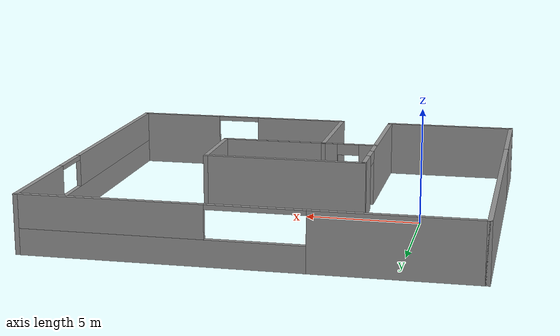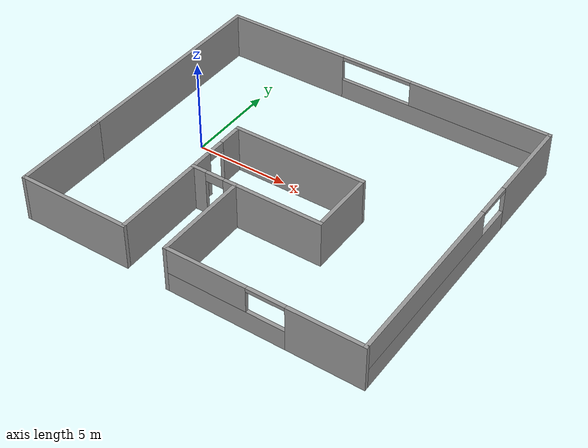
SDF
<sdf version='1.3'>
  <model name='walls'>
      <link name='Wall_0'>
        <collision name='Wall_0_Collision'>
          <geometry>
            <box>
              <size>11.999300 0.200000 2.500000</size>
            </box>
          </geometry>
          <pose>0.000000 0.000000 1.250000 0.000000 0.000000 0.000000</pose>
          <surface>
            <bounce/>
            <friction>
              <ode/>
            </friction>
            <contact>
              <ode/>
            </contact>
          </surface>
        </collision>
        <visual name='Wall_0_Visual'>
          <pose>0.000000 0.000000 1.250000 0.000000 0.000000 0.000000</pose>
          <geometry>
            <box>
              <size>11.999300 0.200000 2.500000</size>
            </box>
          </geometry>
          <material>
            <script>
              <uri>file://media/materials/scripts/gazebo.material</uri>
              <name>Gazebo/Grey</name>
            </script>
          </material>
        </visual>
        <velocity_decay>
          <linear>0.000000</linear>
          <angular>0.000000</angular>
        </velocity_decay>
        <pose>-3.370000 1.799650 0.000000 0.000000 0.000000 1.570800</pose>
        <self_collide>0</self_collide>
        <kinematic>0</kinematic>
        <gravity>1</gravity>
      </link>
      <link name='Wall_1'>
        <pose>5.880010 7.699300 0.000000 0.000000 0.000000 0.000000</pose>
        <visual name='Wall_1_Visual_0'>
          <pose>-5.882070 0.000000 1.250000 0.000000 0.000000 0.000000</pose>
          <geometry>
            <box>
              <size>6.935860 0.200000 2.500000</size>
            </box>
          </geometry>
          <material>
            <script>
              <uri>file://media/materials/scripts/gazebo.material</uri>
              <name>Gazebo/Grey</name>
            </script>
          </material>
        </visual>
        <collision name='Wall_1_Collision_0'>
          <geometry>
            <box>
              <size>6.935860 0.200000 2.500000</size>
            </box>
          </geometry>
          <pose>-5.882070 0.000000 1.250000 0.000000 0.000000 0.000000</pose>
          <surface>
            <bounce/>
            <friction>
              <ode/>
            </friction>
            <contact>
              <ode/>
            </contact>
          </surface>
        </collision>
        <visual name='Wall_1_Visual_1'>
          <pose>3.467930 0.000000 0.550000 0.000000 0.000000 0.000000</pose>
          <geometry>
            <box>
              <size>11.764100 0.200000 1.100000</size>
            </box>
          </geometry>
          <material>
            <script>
              <uri>file://media/materials/scripts/gazebo.material</uri>
              <name>Gazebo/Grey</name>
            </script>
          </material>
        </visual>
        <collision name='Wall_1_Collision_1'>
          <geometry>
            <box>
              <size>11.764100 0.200000 1.100000</size>
            </box>
          </geometry>
          <pose>3.467930 0.000000 0.550000 0.000000 0.000000 0.000000</pose>
          <surface>
            <bounce/>
            <friction>
              <ode/>
            </friction>
            <contact>
              <ode/>
            </contact>
          </surface>
        </collision>
        <visual name='Wall_1_Visual_2'>
          <pose>5.467930 0.000000 1.800000 0.000000 0.000000 0.000000</pose>
          <geometry>
            <box>
              <size>7.764140 0.200000 1.400000</size>
            </box>
          </geometry>
          <material>
            <script>
              <uri>file://media/materials/scripts/gazebo.material</uri>
              <name>Gazebo/Grey</name>
            </script>
          </material>
        </visual>
        <collision name='Wall_1_Collision_2'>
          <geometry>
            <box>
              <size>7.764140 0.200000 1.400000</size>
            </box>
          </geometry>
          <pose>5.467930 0.000000 1.800000 0.000000 0.000000 0.000000</pose>
          <surface>
            <bounce/>
            <friction>
              <ode/>
            </friction>
            <contact>
              <ode/>
            </contact>
          </surface>
        </collision>
        <visual name='Wall_1_Visual_3'>
          <pose>-0.414141 0.000000 2.400000 0.000000 0.000000 0.000000</pose>
          <geometry>
            <box>
              <size>4.000000 0.200000 0.200000</size>
            </box>
          </geometry>
          <material>
            <script>
              <uri>file://media/materials/scripts/gazebo.material</uri>
              <name>Gazebo/Grey</name>
            </script>
          </material>
        </visual>
        <collision name='Wall_1_Collision_3'>
          <geometry>
            <box>
              <size>4.000000 0.200000 0.200000</size>
            </box>
          </geometry>
          <pose>-0.414141 0.000000 2.400000 0.000000 0.000000 0.000000</pose>
          <surface>
            <bounce/>
            <friction>
              <ode/>
            </friction>
            <contact>
              <ode/>
            </contact>
          </surface>
        </collision>
        <velocity_decay>
          <linear>0.000000</linear>
          <angular>0.000000</angular>
        </velocity_decay>
        <self_collide>0</self_collide>
        <kinematic>0</kinematic>
        <gravity>1</gravity>
      </link>
      <link name='Wall_10'>
        <collision name='Wall_10_Collision'>
          <geometry>
            <box>
              <size>5.178060 0.200000 2.500000</size>
            </box>
          </geometry>
          <pose>0.000000 0.000000 1.250000 0.000000 0.000000 0.000000</pose>
          <surface>
            <bounce/>
            <friction>
              <ode/>
            </friction>
            <contact>
              <ode/>
            </contact>
          </surface>
        </collision>
        <visual name='Wall_10_Visual'>
          <pose>0.000000 0.000000 1.250000 0.000000 0.000000 0.000000</pose>
          <geometry>
            <box>
              <size>5.178060 0.200000 2.500000</size>
            </box>
          </geometry>
          <material>
            <script>
              <uri>file://media/materials/scripts/gazebo.material</uri>
              <name>Gazebo/Grey</name>
            </script>
          </material>
        </visual>
        <velocity_decay>
          <linear>0.000000</linear>
          <angular>0.000000</angular>
        </velocity_decay>
        <pose>-3.363360 -6.281140 0.000000 0.000000 0.000000 1.570800</pose>
        <self_collide>0</self_collide>
        <kinematic>0</kinematic>
        <gravity>1</gravity>
      </link>
      <link name='Wall_12'>
        <pose>3.704380 -3.748740 0.000000 0.000000 0.000000 3.141590</pose>
        <visual name='Wall_12_Visual_0'>
          <pose>-0.931117 0.000000 1.250000 0.000000 0.000000 0.000000</pose>
          <geometry>
            <box>
              <size>0.700965 0.200000 2.500000</size>
            </box>
          </geometry>
          <material>
            <script>
              <uri>file://media/materials/scripts/gazebo.material</uri>
              <name>Gazebo/Grey</name>
            </script>
          </material>
        </visual>
        <collision name='Wall_12_Collision_0'>
          <geometry>
            <box>
              <size>0.700965 0.200000 2.500000</size>
            </box>
          </geometry>
          <pose>-0.931117 0.000000 1.250000 0.000000 0.000000 0.000000</pose>
          <surface>
            <bounce/>
            <friction>
              <ode/>
            </friction>
            <contact>
              <ode/>
            </contact>
          </surface>
        </collision>
        <visual name='Wall_12_Visual_1'>
          <pose>0.850483 0.000000 1.250000 0.000000 0.000000 0.000000</pose>
          <geometry>
            <box>
              <size>0.862235 0.200000 2.500000</size>
            </box>
          </geometry>
          <material>
            <script>
              <uri>file://media/materials/scripts/gazebo.material</uri>
              <name>Gazebo/Grey</name>
            </script>
          </material>
        </visual>
        <collision name='Wall_12_Collision_1'>
          <geometry>
            <box>
              <size>0.862235 0.200000 2.500000</size>
            </box>
          </geometry>
          <pose>0.850483 0.000000 1.250000 0.000000 0.000000 0.000000</pose>
          <surface>
            <bounce/>
            <friction>
              <ode/>
            </friction>
            <contact>
              <ode/>
            </contact>
          </surface>
        </collision>
        <visual name='Wall_12_Visual_2'>
          <pose>-0.080635 0.000000 2.250000 0.000000 0.000000 0.000000</pose>
          <geometry>
            <box>
              <size>1.000000 0.200000 0.500000</size>
            </box>
          </geometry>
          <material>
            <script>
              <uri>file://media/materials/scripts/gazebo.material</uri>
              <name>Gazebo/Grey</name>
            </script>
          </material>
        </visual>
        <collision name='Wall_12_Collision_2'>
          <geometry>
            <box>
              <size>1.000000 0.200000 0.500000</size>
            </box>
          </geometry>
          <pose>-0.080635 0.000000 2.250000 0.000000 0.000000 0.000000</pose>
          <surface>
            <bounce/>
            <friction>
              <ode/>
            </friction>
            <contact>
              <ode/>
            </contact>
          </surface>
        </collision>
        <velocity_decay>
          <linear>0.000000</linear>
          <angular>0.000000</angular>
        </velocity_decay>
        <self_collide>0</self_collide>
        <kinematic>0</kinematic>
        <gravity>1</gravity>
      </link>
      <link name='Wall_2'>
        <pose>15.130000 -0.558700 0.000000 0.000000 0.000000 -1.570800</pose>
        <visual name='Wall_2_Visual_0'>
          <pose>-5.946300 0.000000 1.250000 0.000000 0.000000 0.000000</pose>
          <geometry>
            <box>
              <size>4.823410 0.200000 2.500000</size>
            </box>
          </geometry>
          <material>
            <script>
              <uri>file://media/materials/scripts/gazebo.material</uri>
              <name>Gazebo/Grey</name>
            </script>
          </material>
        </visual>
        <collision name='Wall_2_Collision_0'>
          <geometry>
            <box>
              <size>4.823410 0.200000 2.500000</size>
            </box>
          </geometry>
          <pose>-5.946300 0.000000 1.250000 0.000000 0.000000 0.000000</pose>
          <surface>
            <bounce/>
            <friction>
              <ode/>
            </friction>
            <contact>
              <ode/>
            </contact>
          </surface>
        </collision>
        <visual name='Wall_2_Visual_1'>
          <pose>2.411700 0.000000 0.550000 0.000000 0.000000 0.000000</pose>
          <geometry>
            <box>
              <size>11.892600 0.200000 1.100000</size>
            </box>
          </geometry>
          <material>
            <script>
              <uri>file://media/materials/scripts/gazebo.material</uri>
              <name>Gazebo/Grey</name>
            </script>
          </material>
        </visual>
        <collision name='Wall_2_Collision_1'>
          <geometry>
            <box>
              <size>11.892600 0.200000 1.100000</size>
            </box>
          </geometry>
          <pose>2.411700 0.000000 0.550000 0.000000 0.000000 0.000000</pose>
          <surface>
            <bounce/>
            <friction>
              <ode/>
            </friction>
            <contact>
              <ode/>
            </contact>
          </surface>
        </collision>
        <visual name='Wall_2_Visual_2'>
          <pose>3.411700 0.000000 1.800000 0.000000 0.000000 0.000000</pose>
          <geometry>
            <box>
              <size>9.892590 0.200000 1.400000</size>
            </box>
          </geometry>
          <material>
            <script>
              <uri>file://media/materials/scripts/gazebo.material</uri>
              <name>Gazebo/Grey</name>
            </script>
          </material>
        </visual>
        <collision name='Wall_2_Collision_2'>
          <geometry>
            <box>
              <size>9.892590 0.200000 1.400000</size>
            </box>
          </geometry>
          <pose>3.411700 0.000000 1.800000 0.000000 0.000000 0.000000</pose>
          <surface>
            <bounce/>
            <friction>
              <ode/>
            </friction>
            <contact>
              <ode/>
            </contact>
          </surface>
        </collision>
        <visual name='Wall_2_Visual_3'>
          <pose>-2.534590 0.000000 2.400000 0.000000 0.000000 0.000000</pose>
          <geometry>
            <box>
              <size>2.000000 0.200000 0.200000</size>
            </box>
          </geometry>
          <material>
            <script>
              <uri>file://media/materials/scripts/gazebo.material</uri>
              <name>Gazebo/Grey</name>
            </script>
          </material>
        </visual>
        <collision name='Wall_2_Collision_3'>
          <geometry>
            <box>
              <size>2.000000 0.200000 0.200000</size>
            </box>
          </geometry>
          <pose>-2.534590 0.000000 2.400000 0.000000 0.000000 0.000000</pose>
          <surface>
            <bounce/>
            <friction>
              <ode/>
            </friction>
            <contact>
              <ode/>
            </contact>
          </surface>
        </collision>
        <velocity_decay>
          <linear>0.000000</linear>
          <angular>0.000000</angular>
        </velocity_decay>
        <self_collide>0</self_collide>
        <kinematic>0</kinematic>
        <gravity>1</gravity>
      </link>
      <link name='Wall_3'>
        <pose>10.035700 -8.816690 0.000000 0.000000 0.000000 3.141590</pose>
        <visual name='Wall_3_Visual_0'>
          <pose>-3.200330 0.000000 1.250000 0.000000 0.000000 0.000000</pose>
          <geometry>
            <box>
              <size>3.988030 0.200000 2.500000</size>
            </box>
          </geometry>
          <material>
            <script>
              <uri>file://media/materials/scripts/gazebo.material</uri>
              <name>Gazebo/Grey</name>
            </script>
          </material>
        </visual>
        <collision name='Wall_3_Collision_0'>
          <geometry>
            <box>
              <size>3.988030 0.200000 2.500000</size>
            </box>
          </geometry>
          <pose>-3.200330 0.000000 1.250000 0.000000 0.000000 0.000000</pose>
          <surface>
            <bounce/>
            <friction>
              <ode/>
            </friction>
            <contact>
              <ode/>
            </contact>
          </surface>
        </collision>
        <visual name='Wall_3_Visual_1'>
          <pose>1.994020 0.000000 0.550000 0.000000 0.000000 0.000000</pose>
          <geometry>
            <box>
              <size>6.400670 0.200000 1.100000</size>
            </box>
          </geometry>
          <material>
            <script>
              <uri>file://media/materials/scripts/gazebo.material</uri>
              <name>Gazebo/Grey</name>
            </script>
          </material>
        </visual>
        <collision name='Wall_3_Collision_1'>
          <geometry>
            <box>
              <size>6.400670 0.200000 1.100000</size>
            </box>
          </geometry>
          <pose>1.994020 0.000000 0.550000 0.000000 0.000000 0.000000</pose>
          <surface>
            <bounce/>
            <friction>
              <ode/>
            </friction>
            <contact>
              <ode/>
            </contact>
          </surface>
        </collision>
        <visual name='Wall_3_Visual_2'>
          <pose>2.994020 0.000000 1.800000 0.000000 0.000000 0.000000</pose>
          <geometry>
            <box>
              <size>4.400670 0.200000 1.400000</size>
            </box>
          </geometry>
          <material>
            <script>
              <uri>file://media/materials/scripts/gazebo.material</uri>
              <name>Gazebo/Grey</name>
            </script>
          </material>
        </visual>
        <collision name='Wall_3_Collision_2'>
          <geometry>
            <box>
              <size>4.400670 0.200000 1.400000</size>
            </box>
          </geometry>
          <pose>2.994020 0.000000 1.800000 0.000000 0.000000 0.000000</pose>
          <surface>
            <bounce/>
            <friction>
              <ode/>
            </friction>
            <contact>
              <ode/>
            </contact>
          </surface>
        </collision>
        <visual name='Wall_3_Visual_3'>
          <pose>-0.206321 0.000000 2.400000 0.000000 0.000000 0.000000</pose>
          <geometry>
            <box>
              <size>2.000000 0.200000 0.200000</size>
            </box>
          </geometry>
          <material>
            <script>
              <uri>file://media/materials/scripts/gazebo.material</uri>
              <name>Gazebo/Grey</name>
            </script>
          </material>
        </visual>
        <collision name='Wall_3_Collision_3'>
          <geometry>
            <box>
              <size>2.000000 0.200000 0.200000</size>
            </box>
          </geometry>
          <pose>-0.206321 0.000000 2.400000 0.000000 0.000000 0.000000</pose>
          <surface>
            <bounce/>
            <friction>
              <ode/>
            </friction>
            <contact>
              <ode/>
            </contact>
          </surface>
        </collision>
        <velocity_decay>
          <linear>0.000000</linear>
          <angular>0.000000</angular>
        </velocity_decay>
        <self_collide>0</self_collide>
        <kinematic>0</kinematic>
        <gravity>1</gravity>
      </link>
      <link name='Wall_4'>
        <collision name='Wall_4_Collision'>
          <geometry>
            <box>
              <size>5.271110 0.200000 2.500000</size>
            </box>
          </geometry>
          <pose>0.000000 0.000000 1.250000 0.000000 0.000000 0.000000</pose>
          <surface>
            <bounce/>
            <friction>
              <ode/>
            </friction>
            <contact>
              <ode/>
            </contact>
          </surface>
        </collision>
        <visual name='Wall_4_Visual'>
          <pose>0.000000 0.000000 1.250000 0.000000 0.000000 0.000000</pose>
          <geometry>
            <box>
              <size>5.271110 0.200000 2.500000</size>
            </box>
          </geometry>
          <material>
            <script>
              <uri>file://media/materials/scripts/gazebo.material</uri>
              <name>Gazebo/Grey</name>
            </script>
          </material>
        </visual>
        <velocity_decay>
          <linear>0.000000</linear>
          <angular>0.000000</angular>
        </velocity_decay>
        <pose>4.941290 -6.281140 0.000000 0.000000 0.000000 1.570800</pose>
        <self_collide>0</self_collide>
        <kinematic>0</kinematic>
        <gravity>1</gravity>
      </link>
      <link name='Wall_5'>
        <collision name='Wall_5_Collision'>
          <geometry>
            <box>
              <size>4.852390 0.200000 2.500000</size>
            </box>
          </geometry>
          <pose>0.000000 0.000000 1.250000 0.000000 0.000000 0.000000</pose>
          <surface>
            <bounce/>
            <friction>
              <ode/>
            </friction>
            <contact>
              <ode/>
            </contact>
          </surface>
        </collision>
        <visual name='Wall_5_Visual'>
          <pose>0.000000 0.000000 1.250000 0.000000 0.000000 0.000000</pose>
          <geometry>
            <box>
              <size>4.852390 0.200000 2.500000</size>
            </box>
          </geometry>
          <material>
            <script>
              <uri>file://media/materials/scripts/gazebo.material</uri>
              <name>Gazebo/Grey</name>
            </script>
          </material>
        </visual>
        <velocity_decay>
          <linear>0.000000</linear>
          <angular>0.000000</angular>
        </velocity_decay>
        <pose>7.267480 -3.745590 0.000000 0.000000 0.000000 0.000000</pose>
        <self_collide>0</self_collide>
        <kinematic>0</kinematic>
        <gravity>1</gravity>
      </link>
      <link name='Wall_6'>
        <collision name='Wall_6_Collision'>
          <geometry>
            <box>
              <size>3.689290 0.200000 2.500000</size>
            </box>
          </geometry>
          <pose>0.000000 0.000000 1.250000 0.000000 0.000000 0.000000</pose>
          <surface>
            <bounce/>
            <friction>
              <ode/>
            </friction>
            <contact>
              <ode/>
            </contact>
          </surface>
        </collision>
        <visual name='Wall_6_Visual'>
          <pose>0.000000 0.000000 1.250000 0.000000 0.000000 0.000000</pose>
          <geometry>
            <box>
              <size>3.689290 0.200000 2.500000</size>
            </box>
          </geometry>
          <material>
            <script>
              <uri>file://media/materials/scripts/gazebo.material</uri>
              <name>Gazebo/Grey</name>
            </script>
          </material>
        </visual>
        <velocity_decay>
          <linear>0.000000</linear>
          <angular>0.000000</angular>
        </velocity_decay>
        <pose>9.593680 -2.000940 0.000000 0.000000 0.000000 1.570800</pose>
        <self_collide>0</self_collide>
        <kinematic>0</kinematic>
        <gravity>1</gravity>
      </link>
      <link name='Wall_7'>
        <collision name='Wall_7_Collision'>
          <geometry>
            <box>
              <size>7.271630 0.200000 2.500000</size>
            </box>
          </geometry>
          <pose>0.000000 0.000000 1.250000 0.000000 0.000000 0.000000</pose>
          <surface>
            <bounce/>
            <friction>
              <ode/>
            </friction>
            <contact>
              <ode/>
            </contact>
          </surface>
        </collision>
        <visual name='Wall_7_Visual'>
          <pose>0.000000 0.000000 1.250000 0.000000 0.000000 0.000000</pose>
          <geometry>
            <box>
              <size>7.271630 0.200000 2.500000</size>
            </box>
          </geometry>
          <material>
            <script>
              <uri>file://media/materials/scripts/gazebo.material</uri>
              <name>Gazebo/Grey</name>
            </script>
          </material>
        </visual>
        <velocity_decay>
          <linear>0.000000</linear>
          <angular>0.000000</angular>
        </velocity_decay>
        <pose>6.057860 -0.256295 0.000000 0.000000 0.000000 3.141590</pose>
        <self_collide>0</self_collide>
        <kinematic>0</kinematic>
        <gravity>1</gravity>
      </link>
      <link name='Wall_8'>
        <pose>2.522040 -4.513230 0.000000 0.000000 0.000000 -1.570800</pose>
        <visual name='Wall_8_Visual_0'>
          <pose>-3.639830 0.000000 1.250000 0.000000 0.000000 0.000000</pose>
          <geometry>
            <box>
              <size>1.434220 0.200000 2.500000</size>
            </box>
          </geometry>
          <material>
            <script>
              <uri>file://media/materials/scripts/gazebo.material</uri>
              <name>Gazebo/Grey</name>
            </script>
          </material>
        </visual>
        <collision name='Wall_8_Collision_0'>
          <geometry>
            <box>
              <size>1.434220 0.200000 2.500000</size>
            </box>
          </geometry>
          <pose>-3.639830 0.000000 1.250000 0.000000 0.000000 0.000000</pose>
          <surface>
            <bounce/>
            <friction>
              <ode/>
            </friction>
            <contact>
              <ode/>
            </contact>
          </surface>
        </collision>
        <visual name='Wall_8_Visual_1'>
          <pose>1.217110 0.000000 1.250000 0.000000 0.000000 0.000000</pose>
          <geometry>
            <box>
              <size>6.279660 0.200000 2.500000</size>
            </box>
          </geometry>
          <material>
            <script>
              <uri>file://media/materials/scripts/gazebo.material</uri>
              <name>Gazebo/Grey</name>
            </script>
          </material>
        </visual>
        <collision name='Wall_8_Collision_1'>
          <geometry>
            <box>
              <size>6.279660 0.200000 2.500000</size>
            </box>
          </geometry>
          <pose>1.217110 0.000000 1.250000 0.000000 0.000000 0.000000</pose>
          <surface>
            <bounce/>
            <friction>
              <ode/>
            </friction>
            <contact>
              <ode/>
            </contact>
          </surface>
        </collision>
        <visual name='Wall_8_Visual_2'>
          <pose>-2.422720 0.000000 2.250000 0.000000 0.000000 0.000000</pose>
          <geometry>
            <box>
              <size>1.000000 0.200000 0.500000</size>
            </box>
          </geometry>
          <material>
            <script>
              <uri>file://media/materials/scripts/gazebo.material</uri>
              <name>Gazebo/Grey</name>
            </script>
          </material>
        </visual>
        <collision name='Wall_8_Collision_2'>
          <geometry>
            <box>
              <size>1.000000 0.200000 0.500000</size>
            </box>
          </geometry>
          <pose>-2.422720 0.000000 2.250000 0.000000 0.000000 0.000000</pose>
          <surface>
            <bounce/>
            <friction>
              <ode/>
            </friction>
            <contact>
              <ode/>
            </contact>
          </surface>
        </collision>
        <velocity_decay>
          <linear>0.000000</linear>
          <angular>0.000000</angular>
        </velocity_decay>
        <self_collide>0</self_collide>
        <kinematic>0</kinematic>
        <gravity>1</gravity>
      </link>
      <link name='Wall_9'>
        <collision name='Wall_9_Collision'>
          <geometry>
            <box>
              <size>6.085410 0.200000 2.500000</size>
            </box>
          </geometry>
          <pose>0.000000 0.000000 1.250000 0.000000 0.000000 0.000000</pose>
          <surface>
            <bounce/>
            <friction>
              <ode/>
            </friction>
            <contact>
              <ode/>
            </contact>
          </surface>
        </collision>
        <visual name='Wall_9_Visual'>
          <pose>0.000000 0.000000 1.250000 0.000000 0.000000 0.000000</pose>
          <geometry>
            <box>
              <size>6.085410 0.200000 2.500000</size>
            </box>
          </geometry>
          <material>
            <script>
              <uri>file://media/materials/scripts/gazebo.material</uri>
              <name>Gazebo/Grey</name>
            </script>
          </material>
        </visual>
        <velocity_decay>
          <linear>0.000000</linear>
          <angular>0.000000</angular>
        </velocity_decay>
        <pose>-0.420658 -8.770170 0.000000 0.000000 0.000000 3.141590</pose>
        <self_collide>0</self_collide>
        <kinematic>0</kinematic>
        <gravity>1</gravity>
      </link>
      <static>1</static>
    </model>
</sdf>
